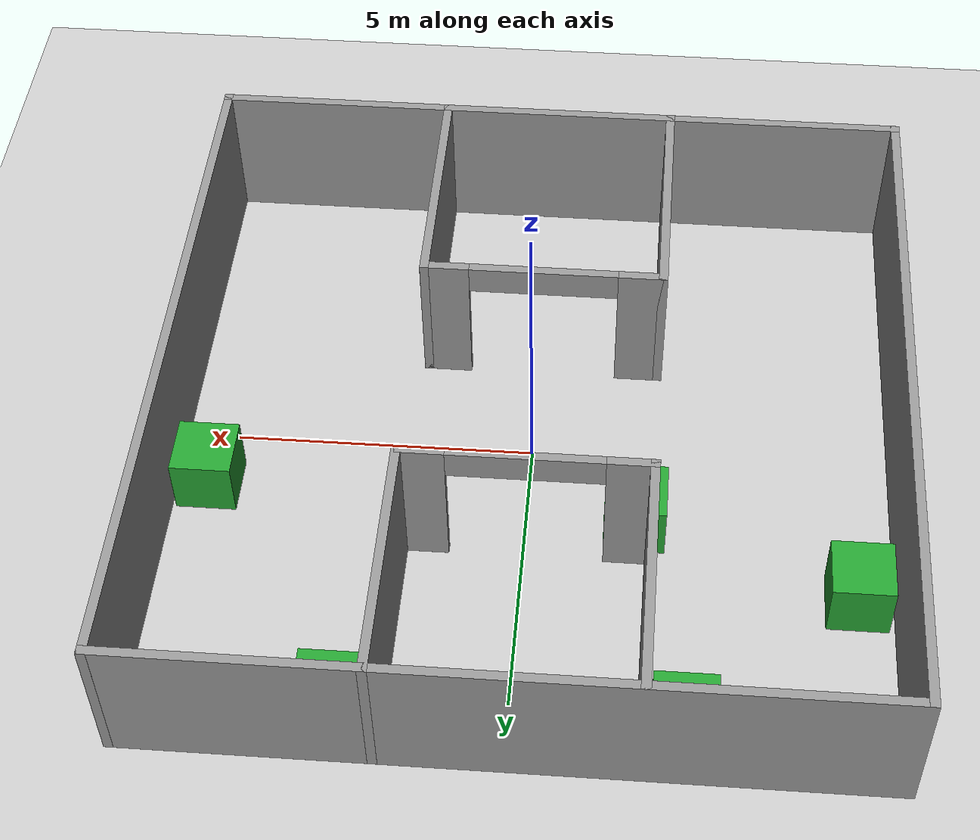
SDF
<sdf version="1.6">
 <world name="default">
  <model name="ground_plane">
   <static>1</static>
   <link name="link">
    <collision name="collision">
     <geometry><plane><normal>0 0 1</normal><size>100 100</size></plane></geometry>
     <surface><friction><ode><mu>100</mu><mu2>50</mu2></ode></friction></surface>
    </collision>
    <visual name="visual">
     <cast_shadows>0</cast_shadows>
     <geometry><plane><normal>0 0 1</normal><size>100 100</size></plane></geometry>
     <material>
      <script><uri>file://media/materials/scripts/gazebo.material</uri><name>Gazebo/Grey</name></script>
     </material>
    </visual>
   </link>
  </model>
  <model name="Warehouse_">
   <pose>-0.054309 0.09299 0 0 -0 0</pose>
   <link name="Wall_57">
    <collision name="Wall_57_Collision">
     <geometry><box><size>12.15 0.15 2.5</size></box></geometry>
     <pose>0 0 1.25 0 -0 0</pose>
    </collision>
    <visual name="Wall_57_Visual">
     <pose>0 0 1.25 0 -0 0</pose>
     <geometry><box><size>12.15 0.15 2.5</size></box></geometry>
     <material>
      <script><uri>file://media/materials/scripts/gazebo.material</uri><name>Gazebo/Grey</name></script>
      <ambient>1 1 1 1</ambient>
     </material>
    </visual>
    <pose>0 -6 0 0 -0 0</pose>
   </link>
   <link name="Wall_59">
    <collision name="Wall_59_Collision">
     <geometry><box><size>12.15 0.15 2.5</size></box></geometry>
     <pose>0 0 1.25 0 -0 0</pose>
    </collision>
    <visual name="Wall_59_Visual">
     <pose>0 0 1.25 0 -0 0</pose>
     <geometry><box><size>12.15 0.15 2.5</size></box></geometry>
     <material>
      <script><uri>file://media/materials/scripts/gazebo.material</uri><name>Gazebo/Grey</name></script>
      <ambient>1 1 1 1</ambient>
     </material>
    </visual>
    <pose>6 0 0 0 -0 1.5708</pose>
   </link>
   <link name="Wall_61">
    <collision name="Wall_61_Collision">
     <geometry><box><size>12.15 0.15 2.5</size></box></geometry>
     <pose>0 0 1.25 0 -0 0</pose>
    </collision>
    <visual name="Wall_61_Visual">
     <pose>0 0 1.25 0 -0 0</pose>
     <geometry><box><size>12.15 0.15 2.5</size></box></geometry>
     <material>
      <script><uri>file://media/materials/scripts/gazebo.material</uri><name>Gazebo/Grey</name></script>
      <ambient>1 1 1 1</ambient>
     </material>
    </visual>
    <pose>0 6 0 0 -0 3.14159</pose>
   </link>
   <link name="Wall_64">
    <collision name="Wall_64_Collision">
     <geometry><box><size>12.15 0.15 2.5</size></box></geometry>
     <pose>0 0 1.25 0 -0 0</pose>
    </collision>
    <visual name="Wall_64_Visual">
     <pose>0 0 1.25 0 -0 0</pose>
     <geometry><box><size>12.15 0.15 2.5</size></box></geometry>
     <material>
      <script><uri>file://media/materials/scripts/gazebo.material</uri><name>Gazebo/Grey</name></script>
      <ambient>1 1 1 1</ambient>
     </material>
    </visual>
    <pose>-6 0 0 0 0 -1.5708</pose>
   </link>
   <link name="Wall_68">
    <pose>0 -2 0 0 -0 0</pose>
    <visual name="Wall_68_Visual_0">
     <pose>-1.6625 0 1.25 0 -0 0</pose>
     <geometry><box><size>0.825 0.15 2.5</size></box></geometry>
     <material>
      <script><uri>file://media/materials/scripts/gazebo.material</uri><name>Gazebo/Grey</name></script>
      <ambient>1 1 1 1</ambient>
     </material>
    </visual>
    <collision name="Wall_68_Collision_0">
     <geometry><box><size>0.825 0.15 2.5</size></box></geometry>
     <pose>-1.6625 0 1.25 0 -0 0</pose>
    </collision>
    <visual name="Wall_68_Visual_1">
     <pose>1.6625 0 1.25 0 -0 0</pose>
     <geometry><box><size>0.825 0.15 2.5</size></box></geometry>
     <material>
      <script><uri>file://media/materials/scripts/gazebo.material</uri><name>Gazebo/Grey</name></script>
      <ambient>1 1 1 1</ambient>
     </material>
    </visual>
    <collision name="Wall_68_Collision_1">
     <geometry><box><size>0.825 0.15 2.5</size></box></geometry>
     <pose>1.6625 0 1.25 0 -0 0</pose>
    </collision>
    <visual name="Wall_68_Visual_2">
     <pose>0 0 2.25 0 -0 0</pose>
     <geometry><box><size>2.5 0.15 0.5</size></box></geometry>
     <material>
      <script><uri>file://media/materials/scripts/gazebo.material</uri><name>Gazebo/Grey</name></script>
      <ambient>1 1 1 1</ambient>
     </material>
    </visual>
    <collision name="Wall_68_Collision_2">
     <geometry><box><size>2.5 0.15 0.5</size></box></geometry>
     <pose>0 0 2.25 0 -0 0</pose>
    </collision>
   </link>
   <link name="Wall_70">
    <collision name="Wall_70_Collision">
     <geometry><box><size>4.15 0.15 2.5</size></box></geometry>
     <pose>0 0 1.25 0 -0 0</pose>
    </collision>
    <visual name="Wall_70_Visual">
     <pose>0 0 1.25 0 -0 0</pose>
     <geometry><box><size>4.15 0.15 2.5</size></box></geometry>
     <material>
      <script><uri>file://media/materials/scripts/gazebo.material</uri><name>Gazebo/Grey</name></script>
      <ambient>1 1 1 1</ambient>
     </material>
    </visual>
    <pose>2 -4 0 0 0 -1.5708</pose>
   </link>
   <link name="Wall_72">
    <collision name="Wall_72_Collision">
     <geometry><box><size>4.15 0.15 2.5</size></box></geometry>
     <pose>0 0 1.25 0 -0 0</pose>
    </collision>
    <visual name="Wall_72_Visual">
     <pose>0 0 1.25 0 -0 0</pose>
     <geometry><box><size>4.15 0.15 2.5</size></box></geometry>
     <material>
      <script><uri>file://media/materials/scripts/gazebo.material</uri><name>Gazebo/Grey</name></script>
      <ambient>1 1 1 1</ambient>
     </material>
    </visual>
    <pose>-2 -4 0 0 0 -1.5708</pose>
   </link>
   <link name="Wall_74">
    <pose>0 2 0 0 -0 0</pose>
    <visual name="Wall_74_Visual_0">
     <pose>-1.6625 0 1.25 0 -0 0</pose>
     <geometry><box><size>0.825 0.15 2.5</size></box></geometry>
     <material>
      <script><uri>file://media/materials/scripts/gazebo.material</uri><name>Gazebo/Grey</name></script>
      <ambient>1 1 1 1</ambient>
     </material>
    </visual>
    <collision name="Wall_74_Collision_0">
     <geometry><box><size>0.825 0.15 2.5</size></box></geometry>
     <pose>-1.6625 0 1.25 0 -0 0</pose>
    </collision>
    <visual name="Wall_74_Visual_1">
     <pose>1.6625 0 1.25 0 -0 0</pose>
     <geometry><box><size>0.825 0.15 2.5</size></box></geometry>
     <material>
      <script><uri>file://media/materials/scripts/gazebo.material</uri><name>Gazebo/Grey</name></script>
      <ambient>1 1 1 1</ambient>
     </material>
    </visual>
    <collision name="Wall_74_Collision_1">
     <geometry><box><size>0.825 0.15 2.5</size></box></geometry>
     <pose>1.6625 0 1.25 0 -0 0</pose>
    </collision>
    <visual name="Wall_74_Visual_2">
     <pose>0 0 2.25 0 -0 0</pose>
     <geometry><box><size>2.5 0.15 0.5</size></box></geometry>
     <material>
      <script><uri>file://media/materials/scripts/gazebo.material</uri><name>Gazebo/Grey</name></script>
      <ambient>1 1 1 1</ambient>
     </material>
    </visual>
    <collision name="Wall_74_Collision_2">
     <geometry><box><size>2.5 0.15 0.5</size></box></geometry>
     <pose>0 0 2.25 0 -0 0</pose>
    </collision>
   </link>
   <link name="Wall_76">
    <collision name="Wall_76_Collision">
     <geometry><box><size>4.15 0.15 2.5</size></box></geometry>
     <pose>0 0 1.25 0 -0 0</pose>
    </collision>
    <visual name="Wall_76_Visual">
     <pose>0 0 1.25 0 -0 0</pose>
     <geometry><box><size>4.15 0.15 2.5</size></box></geometry>
     <material>
      <script><uri>file://media/materials/scripts/gazebo.material</uri><name>Gazebo/Grey</name></script>
      <ambient>1 1 1 1</ambient>
     </material>
    </visual>
    <pose>-2 4 0 0 -0 1.5708</pose>
   </link>
   <link name="Wall_78">
    <collision name="Wall_78_Collision">
     <geometry><box><size>4.15 0.15 2.5</size></box></geometry>
     <pose>0 0 1.25 0 -0 0</pose>
    </collision>
    <visual name="Wall_78_Visual">
     <pose>0 0 1.25 0 -0 0</pose>
     <geometry><box><size>4.15 0.15 2.5</size></box></geometry>
     <material>
      <script><uri>file://media/materials/scripts/gazebo.material</uri><name>Gazebo/Grey</name></script>
      <ambient>1 1 1 1</ambient>
     </material>
    </visual>
    <pose>2 4 0 0 -0 1.5708</pose>
   </link>
   <static>1</static>
  </model>
  <model name="bookshelf_7">
   <static>1</static>
   <link name="link">
    <inertial><mass>1</mass></inertial>
    <collision name="back">
     <pose>0 0.005 0.6 0 -0 0</pose>
     <geometry><box><size>0.9 0.01 1.2</size></box></geometry>
    </collision>
    <visual name="visual1">
     <pose>0 0.005 0.6 0 -0 0</pose>
     <geometry><box><size>0.9 0.01 1.2</size></box></geometry>
     <material>
      <script><uri>file://media/materials/scripts/gazebo.material</uri><name>Gazebo/Wood</name></script>
     </material>
    </visual>
    <collision name="left_side">
     <pose>0.45 -0.195 0.6 0 -0 0</pose>
     <geometry><box><size>0.02 0.4 1.2</size></box></geometry>
    </collision>
    <visual name="visual2">
     <pose>0.45 -0.195 0.6 0 -0 0</pose>
     <geometry><box><size>0.02 0.4 1.2</size></box></geometry>
     <material>
      <script><uri>file://media/materials/scripts/gazebo.material</uri><name>Gazebo/Wood</name></script>
     </material>
    </visual>
    <collision name="right_side">
     <pose>-0.45 -0.195 0.6 0 -0 0</pose>
     <geometry><box><size>0.02 0.4 1.2</size></box></geometry>
    </collision>
    <visual name="visual3">
     <pose>-0.45 -0.195 0.6 0 -0 0</pose>
     <geometry><box><size>0.02 0.4 1.2</size></box></geometry>
     <material>
      <script><uri>file://media/materials/scripts/gazebo.material</uri><name>Gazebo/Wood</name></script>
     </material>
    </visual>
    <collision name="bottom">
     <pose>0 -0.195 0.03 0 -0 0</pose>
     <geometry><box><size>0.88 0.4 0.06</size></box></geometry>
    </collision>
    <visual name="visual4">
     <pose>0 -0.195 0.03 0 -0 0</pose>
     <geometry><box><size>0.88 0.4 0.06</size></box></geometry>
     <material>
      <script><uri>file://media/materials/scripts/gazebo.material</uri><name>Gazebo/Wood</name></script>
     </material>
    </visual>
    <collision name="top">
     <pose>0 -0.195 1.19 0 -0 0</pose>
     <geometry><box><size>0.88 0.4 0.02</size></box></geometry>
    </collision>
    <visual name="visual5">
     <pose>0 -0.195 1.19 0 -0 0</pose>
     <geometry><box><size>0.88 0.4 0.02</size></box></geometry>
     <material>
      <script><uri>file://media/materials/scripts/gazebo.material</uri><name>Gazebo/Wood</name></script>
     </material>
    </visual>
    <collision name="low_shelf">
     <pose>0 -0.195 0.43 0 -0 0</pose>
     <geometry><box><size>0.88 0.4 0.02</size></box></geometry>
    </collision>
    <visual name="visual6">
     <pose>0 -0.195 0.43 0 -0 0</pose>
     <geometry><box><size>0.88 0.4 0.02</size></box></geometry>
     <material>
      <script><uri>file://media/materials/scripts/gazebo.material</uri><name>Gazebo/Wood</name></script>
     </material>
    </visual>
    <collision name="high_shelf">
     <pose>0 -0.195 0.8 0 -0 0</pose>
     <geometry><box><size>0.88 0.4 0.02</size></box></geometry>
    </collision>
    <visual name="visual7">
     <pose>0 -0.195 0.8 0 -0 0</pose>
     <geometry><box><size>0.88 0.4 0.02</size></box></geometry>
     <material>
      <script><uri>file://media/materials/scripts/gazebo.material</uri><name>Gazebo/Wood</name></script>
     </material>
    </visual>
   </link>
   <pose>4.10106 5.90735 0 0 -0 0</pose>
  </model>
  <model name="bookshelf_8">
   <static>1</static>
   <link name="link">
    <inertial><mass>1</mass></inertial>
    <collision name="back">
     <pose>0 0.005 0.6 0 -0 0</pose>
     <geometry><box><size>0.9 0.01 1.2</size></box></geometry>
    </collision>
    <visual name="visual1">
     <pose>0 0.005 0.6 0 -0 0</pose>
     <geometry><box><size>0.9 0.01 1.2</size></box></geometry>
     <material>
      <script><uri>file://media/materials/scripts/gazebo.material</uri><name>Gazebo/Wood</name></script>
     </material>
    </visual>
    <collision name="left_side">
     <pose>0.45 -0.195 0.6 0 -0 0</pose>
     <geometry><box><size>0.02 0.4 1.2</size></box></geometry>
    </collision>
    <visual name="visual2">
     <pose>0.45 -0.195 0.6 0 -0 0</pose>
     <geometry><box><size>0.02 0.4 1.2</size></box></geometry>
     <material>
      <script><uri>file://media/materials/scripts/gazebo.material</uri><name>Gazebo/Wood</name></script>
     </material>
    </visual>
    <collision name="right_side">
     <pose>-0.45 -0.195 0.6 0 -0 0</pose>
     <geometry><box><size>0.02 0.4 1.2</size></box></geometry>
    </collision>
    <visual name="visual3">
     <pose>-0.45 -0.195 0.6 0 -0 0</pose>
     <geometry><box><size>0.02 0.4 1.2</size></box></geometry>
     <material>
      <script><uri>file://media/materials/scripts/gazebo.material</uri><name>Gazebo/Wood</name></script>
     </material>
    </visual>
    <collision name="bottom">
     <pose>0 -0.195 0.03 0 -0 0</pose>
     <geometry><box><size>0.88 0.4 0.06</size></box></geometry>
    </collision>
    <visual name="visual4">
     <pose>0 -0.195 0.03 0 -0 0</pose>
     <geometry><box><size>0.88 0.4 0.06</size></box></geometry>
     <material>
      <script><uri>file://media/materials/scripts/gazebo.material</uri><name>Gazebo/Wood</name></script>
     </material>
    </visual>
    <collision name="top">
     <pose>0 -0.195 1.19 0 -0 0</pose>
     <geometry><box><size>0.88 0.4 0.02</size></box></geometry>
    </collision>
    <visual name="visual5">
     <pose>0 -0.195 1.19 0 -0 0</pose>
     <geometry><box><size>0.88 0.4 0.02</size></box></geometry>
     <material>
      <script><uri>file://media/materials/scripts/gazebo.material</uri><name>Gazebo/Wood</name></script>
     </material>
    </visual>
    <collision name="low_shelf">
     <pose>0 -0.195 0.43 0 -0 0</pose>
     <geometry><box><size>0.88 0.4 0.02</size></box></geometry>
    </collision>
    <visual name="visual6">
     <pose>0 -0.195 0.43 0 -0 0</pose>
     <geometry><box><size>0.88 0.4 0.02</size></box></geometry>
     <material>
      <script><uri>file://media/materials/scripts/gazebo.material</uri><name>Gazebo/Wood</name></script>
     </material>
    </visual>
    <collision name="high_shelf">
     <pose>0 -0.195 0.8 0 -0 0</pose>
     <geometry><box><size>0.88 0.4 0.02</size></box></geometry>
    </collision>
    <visual name="visual7">
     <pose>0 -0.195 0.8 0 -0 0</pose>
     <geometry><box><size>0.88 0.4 0.02</size></box></geometry>
     <material>
      <script><uri>file://media/materials/scripts/gazebo.material</uri><name>Gazebo/Wood</name></script>
     </material>
    </visual>
   </link>
   <pose>-0.422164 6.02165 0 0 -0 0</pose>
  </model>
  <model name="bookshelf_9">
   <static>1</static>
   <link name="link">
    <inertial><mass>1</mass></inertial>
    <collision name="back">
     <pose>0 0.005 0.6 0 -0 0</pose>
     <geometry><box><size>0.9 0.01 1.2</size></box></geometry>
    </collision>
    <visual name="visual1">
     <pose>0 0.005 0.6 0 -0 0</pose>
     <geometry><box><size>0.9 0.01 1.2</size></box></geometry>
     <material>
      <script><uri>file://media/materials/scripts/gazebo.material</uri><name>Gazebo/Wood</name></script>
     </material>
    </visual>
    <collision name="left_side">
     <pose>0.45 -0.195 0.6 0 -0 0</pose>
     <geometry><box><size>0.02 0.4 1.2</size></box></geometry>
    </collision>
    <visual name="visual2">
     <pose>0.45 -0.195 0.6 0 -0 0</pose>
     <geometry><box><size>0.02 0.4 1.2</size></box></geometry>
     <material>
      <script><uri>file://media/materials/scripts/gazebo.material</uri><name>Gazebo/Wood</name></script>
     </material>
    </visual>
    <collision name="right_side">
     <pose>-0.45 -0.195 0.6 0 -0 0</pose>
     <geometry><box><size>0.02 0.4 1.2</size></box></geometry>
    </collision>
    <visual name="visual3">
     <pose>-0.45 -0.195 0.6 0 -0 0</pose>
     <geometry><box><size>0.02 0.4 1.2</size></box></geometry>
     <material>
      <script><uri>file://media/materials/scripts/gazebo.material</uri><name>Gazebo/Wood</name></script>
     </material>
    </visual>
    <collision name="bottom">
     <pose>0 -0.195 0.03 0 -0 0</pose>
     <geometry><box><size>0.88 0.4 0.06</size></box></geometry>
    </collision>
    <visual name="visual4">
     <pose>0 -0.195 0.03 0 -0 0</pose>
     <geometry><box><size>0.88 0.4 0.06</size></box></geometry>
     <material>
      <script><uri>file://media/materials/scripts/gazebo.material</uri><name>Gazebo/Wood</name></script>
     </material>
    </visual>
    <collision name="top">
     <pose>0 -0.195 1.19 0 -0 0</pose>
     <geometry><box><size>0.88 0.4 0.02</size></box></geometry>
    </collision>
    <visual name="visual5">
     <pose>0 -0.195 1.19 0 -0 0</pose>
     <geometry><box><size>0.88 0.4 0.02</size></box></geometry>
     <material>
      <script><uri>file://media/materials/scripts/gazebo.material</uri><name>Gazebo/Wood</name></script>
     </material>
    </visual>
    <collision name="low_shelf">
     <pose>0 -0.195 0.43 0 -0 0</pose>
     <geometry><box><size>0.88 0.4 0.02</size></box></geometry>
    </collision>
    <visual name="visual6">
     <pose>0 -0.195 0.43 0 -0 0</pose>
     <geometry><box><size>0.88 0.4 0.02</size></box></geometry>
     <material>
      <script><uri>file://media/materials/scripts/gazebo.material</uri><name>Gazebo/Wood</name></script>
     </material>
    </visual>
    <collision name="high_shelf">
     <pose>0 -0.195 0.8 0 -0 0</pose>
     <geometry><box><size>0.88 0.4 0.02</size></box></geometry>
    </collision>
    <visual name="visual7">
     <pose>0 -0.195 0.8 0 -0 0</pose>
     <geometry><box><size>0.88 0.4 0.02</size></box></geometry>
     <material>
      <script><uri>file://media/materials/scripts/gazebo.material</uri><name>Gazebo/Wood</name></script>
     </material>
    </visual>
   </link>
   <pose>-4.74534 5.99934 0 0 -0 0</pose>
  </model>
  <model name="Box_0_clone_0">
   <link name="link_0">
    <pose>-2e-06 3e-06 0 0 -0 0</pose>
    <inertial>
     <mass>1</mass>
     <inertia>
      <ixx>0.166667</ixx>
      <ixy>0</ixy>
      <ixz>0</ixz>
      <iyy>0.166667</iyy>
      <iyz>0</iyz>
      <izz>0.166667</izz>
     </inertia>
    </inertial>
    <visual name="visual">
     <geometry><box><size>1 1 1</size></box></geometry>
     <material>
      <lighting>1</lighting>
      <script><uri>file://media/materials/scripts/gazebo.material</uri><name>Gazebo/Green</name></script>
      <ambient>0 1 0 1</ambient>
      <diffuse>0 1 0 1</diffuse>
      <specular>0.01 0.01 0.01 1</specular>
      <emissive>0 0 0 1</emissive>
      <shader type="vertex"><normal_map>__default__</normal_map></shader>
     </material>
    </visual>
    <collision name="collision">
     <geometry><box><size>1 1 1</size></box></geometry>
     <surface>
      <friction>
       <ode><mu>1</mu><mu2>1</mu2><fdir1>0 0 0</fdir1><slip1>0</slip1><slip2>0</slip2></ode>
       <torsional>
        <coefficient>1</coefficient>
        <patch_radius>0</patch_radius>
        <surface_radius>0</surface_radius>
        <use_patch_radius>1</use_patch_radius>
        <ode><slip>0</slip></ode>
       </torsional>
      </friction>
      <bounce><restitution_coefficient>0</restitution_coefficient><threshold>1e+06</threshold></bounce>
      <contact>
       <collide_without_contact>0</collide_without_contact>
       <collide_without_contact_bitmask>1</collide_without_contact_bitmask>
       <collide_bitmask>1</collide_bitmask>
       <ode>
        <soft_cfm>0</soft_cfm>
        <soft_erp>0.2</soft_erp>
        <kp>1e+13</kp>
        <kd>1</kd>
        <max_vel>0.01</max_vel>
        <min_depth>0</min_depth>
       </ode>
       <bullet>
        <split_impulse>1</split_impulse>
        <split_impulse_penetration_threshold>-0.01</split_impulse_penetration_threshold>
        <soft_cfm>0</soft_cfm>
        <soft_erp>0.2</soft_erp>
        <kp>1e+13</kp>
        <kd>1</kd>
       </bullet>
      </contact>
     </surface>
    </collision>
   </link>
   <static>1</static>
   <allow_auto_disable>0</allow_auto_disable>
   <pose>5.30629 1.04357 0.502592 0 -0 0</pose>
  </model>
  <model name="Box_0_clone_1">
   <link name="link_0">
    <pose>-2e-06 3e-06 0 0 -0 0</pose>
    <inertial>
     <mass>1</mass>
     <inertia>
      <ixx>0.166667</ixx>
      <ixy>0</ixy>
      <ixz>0</ixz>
      <iyy>0.166667</iyy>
      <iyz>0</iyz>
      <izz>0.166667</izz>
     </inertia>
    </inertial>
    <visual name="visual">
     <geometry><box><size>1 1 1</size></box></geometry>
     <material>
      <lighting>1</lighting>
      <script><uri>file://media/materials/scripts/gazebo.material</uri><name>Gazebo/Green</name></script>
      <ambient>0 1 0 1</ambient>
      <diffuse>0 1 0 1</diffuse>
      <specular>0.01 0.01 0.01 1</specular>
      <emissive>0 0 0 1</emissive>
      <shader type="vertex"><normal_map>__default__</normal_map></shader>
     </material>
    </visual>
    <collision name="collision">
     <geometry><box><size>1 1 1</size></box></geometry>
     <surface>
      <friction>
       <ode><mu>1</mu><mu2>1</mu2><fdir1>0 0 0</fdir1><slip1>0</slip1><slip2>0</slip2></ode>
       <torsional>
        <coefficient>1</coefficient>
        <patch_radius>0</patch_radius>
        <surface_radius>0</surface_radius>
        <use_patch_radius>1</use_patch_radius>
        <ode><slip>0</slip></ode>
       </torsional>
      </friction>
      <bounce><restitution_coefficient>0</restitution_coefficient><threshold>1e+06</threshold></bounce>
      <contact>
       <collide_without_contact>0</collide_without_contact>
       <collide_without_contact_bitmask>1</collide_without_contact_bitmask>
       <collide_bitmask>1</collide_bitmask>
       <ode>
        <soft_cfm>0</soft_cfm>
        <soft_erp>0.2</soft_erp>
        <kp>1e+13</kp>
        <kd>1</kd>
        <max_vel>0.01</max_vel>
        <min_depth>0</min_depth>
       </ode>
       <bullet>
        <split_impulse>1</split_impulse>
        <split_impulse_penetration_threshold>-0.01</split_impulse_penetration_threshold>
        <soft_cfm>0</soft_cfm>
        <soft_erp>0.2</soft_erp>
        <kp>1e+13</kp>
        <kd>1</kd>
       </bullet>
      </contact>
     </surface>
    </collision>
   </link>
   <static>1</static>
   <allow_auto_disable>0</allow_auto_disable>
   <pose>2.67453 5.35698 0.502592 0 -0 0</pose>
  </model>
  <model name="Box_0_clone_3">
   <link name="link_0">
    <pose>-2e-06 3e-06 0 0 -0 0</pose>
    <inertial>
     <mass>1</mass>
     <inertia>
      <ixx>0.166667</ixx>
      <ixy>0</ixy>
      <ixz>0</ixz>
      <iyy>0.166667</iyy>
      <iyz>0</iyz>
      <izz>0.166667</izz>
     </inertia>
    </inertial>
    <visual name="visual">
     <geometry><box><size>1 1 1</size></box></geometry>
     <material>
      <lighting>1</lighting>
      <script><uri>file://media/materials/scripts/gazebo.material</uri><name>Gazebo/Green</name></script>
      <ambient>0 1 0 1</ambient>
      <diffuse>0 1 0 1</diffuse>
      <specular>0.01 0.01 0.01 1</specular>
      <emissive>0 0 0 1</emissive>
      <shader type="vertex"><normal_map>__default__</normal_map></shader>
     </material>
    </visual>
    <collision name="collision">
     <geometry><box><size>1 1 1</size></box></geometry>
     <surface>
      <friction>
       <ode><mu>1</mu><mu2>1</mu2><fdir1>0 0 0</fdir1><slip1>0</slip1><slip2>0</slip2></ode>
       <torsional>
        <coefficient>1</coefficient>
        <patch_radius>0</patch_radius>
        <surface_radius>0</surface_radius>
        <use_patch_radius>1</use_patch_radius>
        <ode><slip>0</slip></ode>
       </torsional>
      </friction>
      <bounce><restitution_coefficient>0</restitution_coefficient><threshold>1e+06</threshold></bounce>
      <contact>
       <collide_without_contact>0</collide_without_contact>
       <collide_without_contact_bitmask>1</collide_without_contact_bitmask>
       <collide_bitmask>1</collide_bitmask>
       <ode>
        <soft_cfm>0</soft_cfm>
        <soft_erp>0.2</soft_erp>
        <kp>1e+13</kp>
        <kd>1</kd>
        <max_vel>0.01</max_vel>
        <min_depth>0</min_depth>
       </ode>
       <bullet>
        <split_impulse>1</split_impulse>
        <split_impulse_penetration_threshold>-0.01</split_impulse_penetration_threshold>
        <soft_cfm>0</soft_cfm>
        <soft_erp>0.2</soft_erp>
        <kp>1e+13</kp>
        <kd>1</kd>
       </bullet>
      </contact>
     </surface>
    </collision>
   </link>
   <static>1</static>
   <allow_auto_disable>0</allow_auto_disable>
   <pose>-1.796 1.43087 0.502592 0 -0 0</pose>
  </model>
  <model name="Box_0_clone_6">
   <link name="link_0">
    <pose>-2e-06 3e-06 0 0 -0 0</pose>
    <inertial>
     <mass>1</mass>
     <inertia>
      <ixx>0.166667</ixx>
      <ixy>0</ixy>
      <ixz>0</ixz>
      <iyy>0.166667</iyy>
      <iyz>0</iyz>
      <izz>0.166667</izz>
     </inertia>
    </inertial>
    <visual name="visual">
     <geometry><box><size>1 1 1</size></box></geometry>
     <material>
      <lighting>1</lighting>
      <script><uri>file://media/materials/scripts/gazebo.material</uri><name>Gazebo/Green</name></script>
      <ambient>0 1 0 1</ambient>
      <diffuse>0 1 0 1</diffuse>
      <specular>0.01 0.01 0.01 1</specular>
      <emissive>0 0 0 1</emissive>
      <shader type="vertex"><normal_map>__default__</normal_map></shader>
     </material>
    </visual>
    <collision name="collision">
     <geometry><box><size>1 1 1</size></box></geometry>
     <surface>
      <friction>
       <ode><mu>1</mu><mu2>1</mu2><fdir1>0 0 0</fdir1><slip1>0</slip1><slip2>0</slip2></ode>
       <torsional>
        <coefficient>1</coefficient>
        <patch_radius>0</patch_radius>
        <surface_radius>0</surface_radius>
        <use_patch_radius>1</use_patch_radius>
        <ode><slip>0</slip></ode>
       </torsional>
      </friction>
      <bounce><restitution_coefficient>0</restitution_coefficient><threshold>1e+06</threshold></bounce>
      <contact>
       <collide_without_contact>0</collide_without_contact>
       <collide_without_contact_bitmask>1</collide_without_contact_bitmask>
       <collide_bitmask>1</collide_bitmask>
       <ode>
        <soft_cfm>0</soft_cfm>
        <soft_erp>0.2</soft_erp>
        <kp>1e+13</kp>
        <kd>1</kd>
        <max_vel>0.01</max_vel>
        <min_depth>0</min_depth>
       </ode>
       <bullet>
        <split_impulse>1</split_impulse>
        <split_impulse_penetration_threshold>-0.01</split_impulse_penetration_threshold>
        <soft_cfm>0</soft_cfm>
        <soft_erp>0.2</soft_erp>
        <kp>1e+13</kp>
        <kd>1</kd>
       </bullet>
      </contact>
     </surface>
    </collision>
   </link>
   <static>1</static>
   <allow_auto_disable>0</allow_auto_disable>
   <pose>-5.38806 2.73227 0.502592 0 -0 0</pose>
  </model>
  <model name="Box_0_clone_7">
   <link name="link_0">
    <pose>-2e-06 3e-06 0 0 -0 0</pose>
    <inertial>
     <mass>1</mass>
     <inertia>
      <ixx>0.166667</ixx>
      <ixy>0</ixy>
      <ixz>0</ixz>
      <iyy>0.166667</iyy>
      <iyz>0</iyz>
      <izz>0.166667</izz>
     </inertia>
    </inertial>
    <visual name="visual">
     <geometry><box><size>1 1 1</size></box></geometry>
     <material>
      <lighting>1</lighting>
      <script><uri>file://media/materials/scripts/gazebo.material</uri><name>Gazebo/Green</name></script>
      <ambient>0 1 0 1</ambient>
      <diffuse>0 1 0 1</diffuse>
      <specular>0.01 0.01 0.01 1</specular>
      <emissive>0 0 0 1</emissive>
      <shader type="vertex"><normal_map>__default__</normal_map></shader>
     </material>
    </visual>
    <collision name="collision">
     <geometry><box><size>1 1 1</size></box></geometry>
     <surface>
      <friction>
       <ode><mu>1</mu><mu2>1</mu2><fdir1>0 0 0</fdir1><slip1>0</slip1><slip2>0</slip2></ode>
       <torsional>
        <coefficient>1</coefficient>
        <patch_radius>0</patch_radius>
        <surface_radius>0</surface_radius>
        <use_patch_radius>1</use_patch_radius>
        <ode><slip>0</slip></ode>
       </torsional>
      </friction>
      <bounce><restitution_coefficient>0</restitution_coefficient><threshold>1e+06</threshold></bounce>
      <contact>
       <collide_without_contact>0</collide_without_contact>
       <collide_without_contact_bitmask>1</collide_without_contact_bitmask>
       <collide_bitmask>1</collide_bitmask>
       <ode>
        <soft_cfm>0</soft_cfm>
        <soft_erp>0.2</soft_erp>
        <kp>1e+13</kp>
        <kd>1</kd>
        <max_vel>0.01</max_vel>
        <min_depth>0</min_depth>
       </ode>
       <bullet>
        <split_impulse>1</split_impulse>
        <split_impulse_penetration_threshold>-0.01</split_impulse_penetration_threshold>
        <soft_cfm>0</soft_cfm>
        <soft_erp>0.2</soft_erp>
        <kp>1e+13</kp>
        <kd>1</kd>
       </bullet>
      </contact>
     </surface>
    </collision>
   </link>
   <static>1</static>
   <allow_auto_disable>0</allow_auto_disable>
   <pose>-2.68561 5.35973 0.502592 0 -0 0</pose>
  </model>
  <model name="red_box">
   <link name="link_2">
    <inertial>
     <mass>0.05</mass>
     <inertia>
      <ixx>0.166667</ixx>
      <ixy>0</ixy>
      <ixz>0</ixz>
      <iyy>0.166667</iyy>
      <iyz>0</iyz>
      <izz>0.166667</izz>
     </inertia>
    </inertial>
    <visual name="visual">
     <geometry><box><size>0.05 0.05 0.05</size></box></geometry>
     <material>
      <lighting>1</lighting>
      <script><uri>file://media/materials/scripts/gazebo.material</uri><name>Gazebo/Red</name></script>
      <ambient>1 0 0 1</ambient>
      <diffuse>0.7 0.7 0.7 1</diffuse>
      <specular>0.01 0.01 0.01 1</specular>
      <emissive>0 0 0 1</emissive>
      <shader type="vertex"><normal_map>__default__</normal_map></shader>
     </material>
    </visual>
    <collision name="collision">
     <geometry><box><size>0.05 0.05 0.05</size></box></geometry>
     <surface>
      <friction>
       <ode><mu>1</mu><mu2>1</mu2><fdir1>0 0 0</fdir1><slip1>0</slip1><slip2>0</slip2></ode>
       <torsional>
        <coefficient>1</coefficient>
        <patch_radius>0</patch_radius>
        <surface_radius>0</surface_radius>
        <use_patch_radius>1</use_patch_radius>
        <ode><slip>0</slip></ode>
       </torsional>
      </friction>
      <bounce><restitution_coefficient>0</restitution_coefficient><threshold>1e+06</threshold></bounce>
      <contact>
       <collide_without_contact>0</collide_without_contact>
       <collide_without_contact_bitmask>1</collide_without_contact_bitmask>
       <collide_bitmask>1</collide_bitmask>
       <ode>
        <soft_cfm>0</soft_cfm>
        <soft_erp>0.2</soft_erp>
        <kp>1e+13</kp>
        <kd>1</kd>
        <max_vel>0.01</max_vel>
        <min_depth>0</min_depth>
       </ode>
       <bullet>
        <split_impulse>1</split_impulse>
        <split_impulse_penetration_threshold>-0.01</split_impulse_penetration_threshold>
        <soft_cfm>0</soft_cfm>
        <soft_erp>0.2</soft_erp>
        <kp>1e+13</kp>
        <kd>1</kd>
       </bullet>
      </contact>
     </surface>
    </collision>
   </link>
   <static>1</static>
   <pose>4.09671 5.56234 0.467723 0 -0 0</pose>
  </model>
  <model name="red_box_clone">
   <link name="link_2">
    <inertial>
     <mass>0.05</mass>
     <inertia>
      <ixx>0.166667</ixx>
      <ixy>0</ixy>
      <ixz>0</ixz>
      <iyy>0.166667</iyy>
      <iyz>0</iyz>
      <izz>0.166667</izz>
     </inertia>
    </inertial>
    <visual name="visual">
     <geometry><box><size>0.05 0.05 0.05</size></box></geometry>
     <material>
      <lighting>1</lighting>
      <script><uri>file://media/materials/scripts/gazebo.material</uri><name>Gazebo/Red</name></script>
      <ambient>1 0 0 1</ambient>
      <diffuse>0.7 0.7 0.7 1</diffuse>
      <specular>0.01 0.01 0.01 1</specular>
      <emissive>0 0 0 1</emissive>
      <shader type="vertex"><normal_map>__default__</normal_map></shader>
     </material>
    </visual>
    <collision name="collision">
     <geometry><box><size>0.05 0.05 0.05</size></box></geometry>
     <surface>
      <friction>
       <ode><mu>1</mu><mu2>1</mu2><fdir1>0 0 0</fdir1><slip1>0</slip1><slip2>0</slip2></ode>
       <torsional>
        <coefficient>1</coefficient>
        <patch_radius>0</patch_radius>
        <surface_radius>0</surface_radius>
        <use_patch_radius>1</use_patch_radius>
        <ode><slip>0</slip></ode>
       </torsional>
      </friction>
      <bounce><restitution_coefficient>0</restitution_coefficient><threshold>1e+06</threshold></bounce>
      <contact>
       <collide_without_contact>0</collide_without_contact>
       <collide_without_contact_bitmask>1</collide_without_contact_bitmask>
       <collide_bitmask>1</collide_bitmask>
       <ode>
        <soft_cfm>0</soft_cfm>
        <soft_erp>0.2</soft_erp>
        <kp>1e+13</kp>
        <kd>1</kd>
        <max_vel>0.01</max_vel>
        <min_depth>0</min_depth>
       </ode>
       <bullet>
        <split_impulse>1</split_impulse>
        <split_impulse_penetration_threshold>-0.01</split_impulse_penetration_threshold>
        <soft_cfm>0</soft_cfm>
        <soft_erp>0.2</soft_erp>
        <kp>1e+13</kp>
        <kd>1</kd>
       </bullet>
      </contact>
     </surface>
    </collision>
   </link>
   <static>1</static>
   <pose>-0.466449 5.68776 0.467723 0 -0 0</pose>
  </model>
  <model name="red_box_clone_0">
   <link name="link_2">
    <inertial>
     <mass>0.05</mass>
     <inertia>
      <ixx>0.166667</ixx>
      <ixy>0</ixy>
      <ixz>0</ixz>
      <iyy>0.166667</iyy>
      <iyz>0</iyz>
      <izz>0.166667</izz>
     </inertia>
    </inertial>
    <visual name="visual">
     <geometry><box><size>0.05 0.05 0.05</size></box></geometry>
     <material>
      <lighting>1</lighting>
      <script><uri>file://media/materials/scripts/gazebo.material</uri><name>Gazebo/Red</name></script>
      <ambient>1 0 0 1</ambient>
      <diffuse>0.7 0.7 0.7 1</diffuse>
      <specular>0.01 0.01 0.01 1</specular>
      <emissive>0 0 0 1</emissive>
      <shader type="vertex"><normal_map>__default__</normal_map></shader>
     </material>
    </visual>
    <collision name="collision">
     <geometry><box><size>0.05 0.05 0.05</size></box></geometry>
     <surface>
      <friction>
       <ode><mu>1</mu><mu2>1</mu2><fdir1>0 0 0</fdir1><slip1>0</slip1><slip2>0</slip2></ode>
       <torsional>
        <coefficient>1</coefficient>
        <patch_radius>0</patch_radius>
        <surface_radius>0</surface_radius>
        <use_patch_radius>1</use_patch_radius>
        <ode><slip>0</slip></ode>
       </torsional>
      </friction>
      <bounce><restitution_coefficient>0</restitution_coefficient><threshold>1e+06</threshold></bounce>
      <contact>
       <collide_without_contact>0</collide_without_contact>
       <collide_without_contact_bitmask>1</collide_without_contact_bitmask>
       <collide_bitmask>1</collide_bitmask>
       <ode>
        <soft_cfm>0</soft_cfm>
        <soft_erp>0.2</soft_erp>
        <kp>1e+13</kp>
        <kd>1</kd>
        <max_vel>0.01</max_vel>
        <min_depth>0</min_depth>
       </ode>
       <bullet>
        <split_impulse>1</split_impulse>
        <split_impulse_penetration_threshold>-0.01</split_impulse_penetration_threshold>
        <soft_cfm>0</soft_cfm>
        <soft_erp>0.2</soft_erp>
        <kp>1e+13</kp>
        <kd>1</kd>
       </bullet>
      </contact>
     </surface>
    </collision>
   </link>
   <static>1</static>
   <pose>-4.7076 5.65519 0.467723 0 -0 0</pose>
  </model>
 </world>
</sdf>
